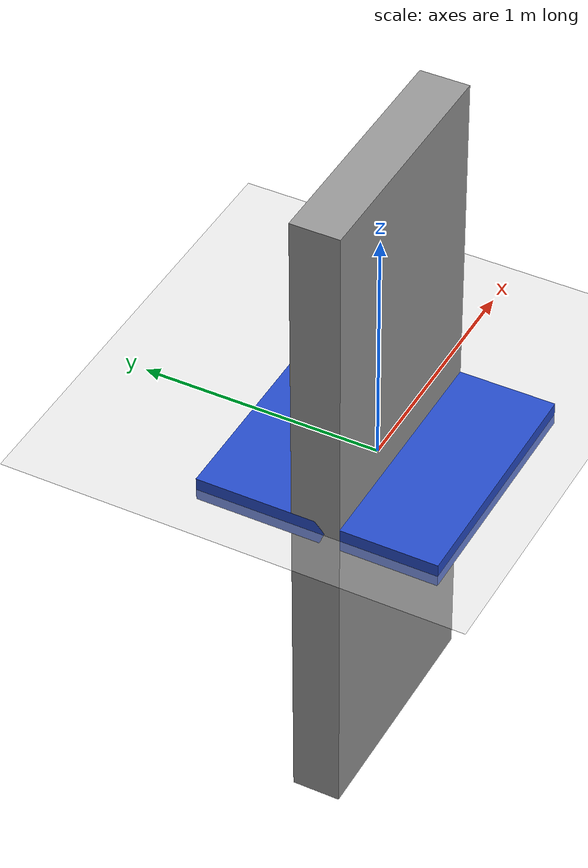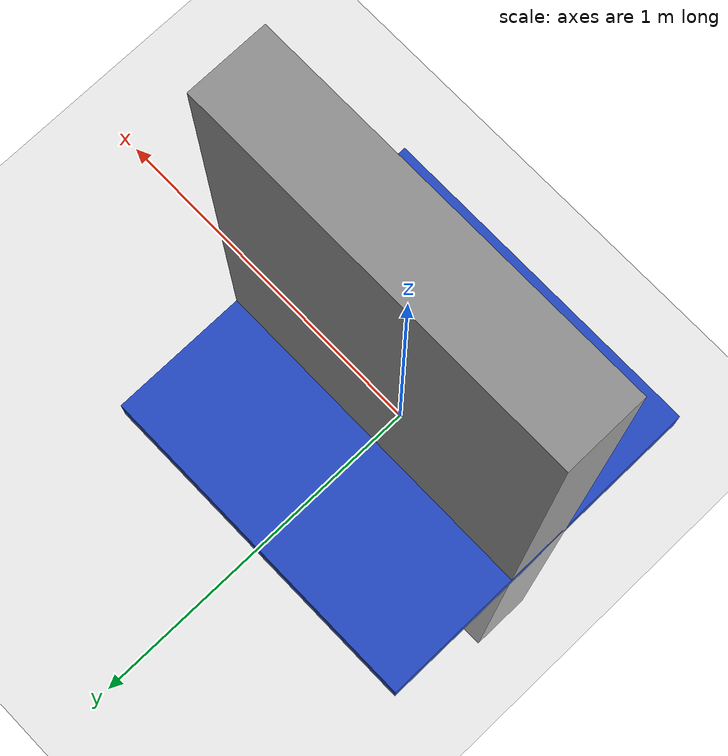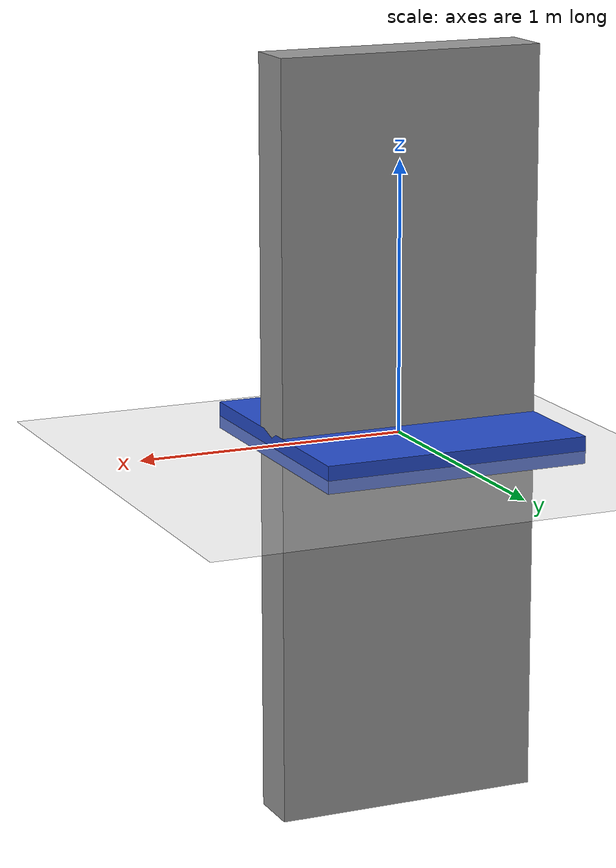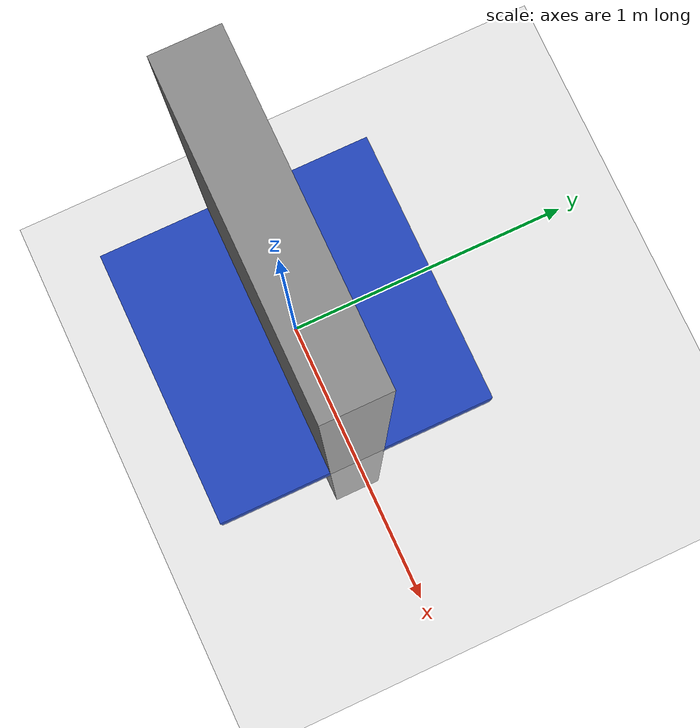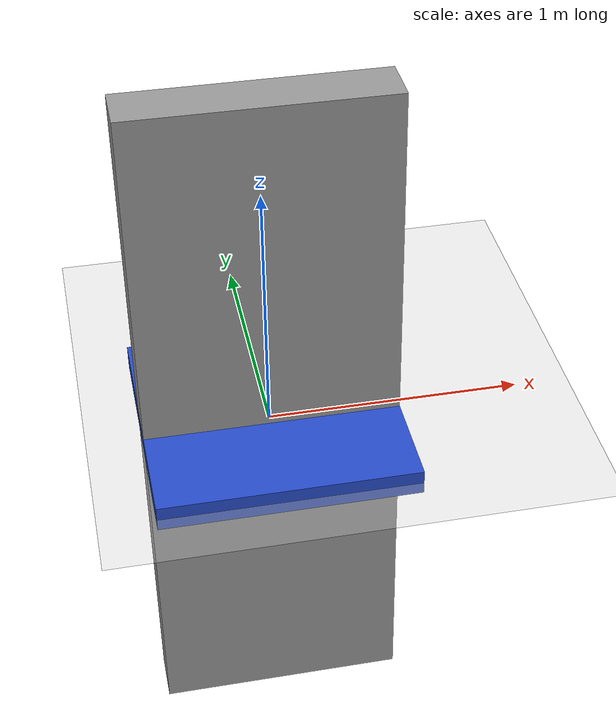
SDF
<sdf version="1.4">
 <world name="default">
  <light name="sun" type="directional">
   <pose>0 0 10 0 -0 0</pose>
   <diffuse>0.8 0.8 0.8 1</diffuse>
   <specular>0.2 0.2 0.2 1</specular>
   <attenuation>
    <range>1000</range>
    <constant>0.9</constant>
    <linear>0.01</linear>
    <quadratic>0.001</quadratic>
   </attenuation>
   <direction>-0.5 0.1 -0.9</direction>
  </light>
  <model name="ground_plane">
   <static>1</static>
   <link name="link">
    <collision name="collision">
     <geometry><plane><normal>0 0 1</normal><size>100 100</size></plane></geometry>
     <surface><friction><ode><mu>100</mu><mu2>50</mu2></ode></friction></surface>
    </collision>
    <visual name="visual">
     <cast_shadows>0</cast_shadows>
     <geometry><plane><normal>0 0 1</normal><size>100 100</size></plane></geometry>
     <material>
      <script><uri>file://media/materials/scripts/gazebo.material</uri><name>Gazebo/Grey</name></script>
     </material>
    </visual>
    <velocity_decay><linear>0</linear><angular>0</angular></velocity_decay>
   </link>
  </model>
  <physics type="ode">
   <max_step_size>0.001</max_step_size>
   <real_time_factor>1</real_time_factor>
   <real_time_update_rate>1000</real_time_update_rate>
   <gravity>0 0 -9.8</gravity>
  </physics>
  <scene><ambient>0.4 0.4 0.4 1</ambient><background>0.7 0.7 0.7 1</background><shadows>1</shadows></scene>
  <model name="grey_wall_1">
   <static>1</static>
   <link name="link">
    <collision name="collision"><geometry><box><size>1 0.2 2.8</size></box></geometry></collision>
    <visual name="visual">
     <cast_shadows>0</cast_shadows>
     <geometry><box><size>1 0.2 2.8</size></box></geometry>
     <material>
      <script>
       <uri>model://grey_wall/materials/scripts</uri>
       <uri>model://grey_wall/materials/textures</uri>
       <name>vrc/grey_wall</name>
      </script>
     </material>
    </visual>
    <velocity_decay><linear>0</linear><angular>0</angular></velocity_decay>
   </link>
  </model>
  <model name="grey_wall_2">
   <static>1</static>
   <link name="link">
    <collision name="collision"><geometry><box><size>1 0.2 2.8</size></box></geometry></collision>
    <visual name="visual">
     <cast_shadows>0</cast_shadows>
     <geometry><box><size>1 0.2 2.8</size></box></geometry>
     <material>
      <script>
       <uri>model://grey_wall/materials/scripts</uri>
       <uri>model://grey_wall/materials/textures</uri>
       <name>vrc/grey_wall</name>
      </script>
     </material>
    </visual>
    <velocity_decay><linear>0</linear><angular>0</angular></velocity_decay>
   </link>
  </model>
  <model name="grey_wall_3">
   <static>1</static>
   <link name="link">
    <collision name="collision"><geometry><box><size>1 0.2 2.8</size></box></geometry></collision>
    <visual name="visual">
     <cast_shadows>0</cast_shadows>
     <geometry><box><size>1 0.2 2.8</size></box></geometry>
     <material>
      <script>
       <uri>model://grey_wall/materials/scripts</uri>
       <uri>model://grey_wall/materials/textures</uri>
       <name>vrc/grey_wall</name>
      </script>
     </material>
    </visual>
    <velocity_decay><linear>0</linear><angular>0</angular></velocity_decay>
   </link>
  </model>
  <model name="grey_wall_4">
   <static>1</static>
   <link name="link">
    <collision name="collision"><geometry><box><size>1 0.2 2.8</size></box></geometry></collision>
    <visual name="visual">
     <cast_shadows>0</cast_shadows>
     <geometry><box><size>1 0.2 2.8</size></box></geometry>
     <material>
      <script>
       <uri>model://grey_wall/materials/scripts</uri>
       <uri>model://grey_wall/materials/textures</uri>
       <name>vrc/grey_wall</name>
      </script>
     </material>
    </visual>
    <velocity_decay><linear>0</linear><angular>0</angular></velocity_decay>
   </link>
  </model>
  <model name="grey_wall_5">
   <static>1</static>
   <link name="link">
    <collision name="collision"><geometry><box><size>1 0.2 2.8</size></box></geometry></collision>
    <visual name="visual">
     <cast_shadows>0</cast_shadows>
     <geometry><box><size>1 0.2 2.8</size></box></geometry>
     <material>
      <script>
       <uri>model://grey_wall/materials/scripts</uri>
       <uri>model://grey_wall/materials/textures</uri>
       <name>vrc/grey_wall</name>
      </script>
     </material>
    </visual>
    <velocity_decay><linear>0</linear><angular>0</angular></velocity_decay>
   </link>
  </model>
  <model name="grey_wall_6">
   <static>1</static>
   <link name="link">
    <collision name="collision"><geometry><box><size>1 0.2 2.8</size></box></geometry></collision>
    <visual name="visual">
     <cast_shadows>0</cast_shadows>
     <geometry><box><size>1 0.2 2.8</size></box></geometry>
     <material>
      <script>
       <uri>model://grey_wall/materials/scripts</uri>
       <uri>model://grey_wall/materials/textures</uri>
       <name>vrc/grey_wall</name>
      </script>
     </material>
    </visual>
    <velocity_decay><linear>0</linear><angular>0</angular></velocity_decay>
   </link>
  </model>
  <model name="grey_wall_7">
   <static>1</static>
   <link name="link">
    <collision name="collision"><geometry><box><size>1 0.2 2.8</size></box></geometry></collision>
    <visual name="visual">
     <cast_shadows>0</cast_shadows>
     <geometry><box><size>1 0.2 2.8</size></box></geometry>
     <material>
      <script>
       <uri>model://grey_wall/materials/scripts</uri>
       <uri>model://grey_wall/materials/textures</uri>
       <name>vrc/grey_wall</name>
      </script>
     </material>
    </visual>
    <velocity_decay><linear>0</linear><angular>0</angular></velocity_decay>
   </link>
  </model>
  <model name="grey_wall_8">
   <static>1</static>
   <link name="link">
    <collision name="collision"><geometry><box><size>1 0.2 2.8</size></box></geometry></collision>
    <visual name="visual">
     <cast_shadows>0</cast_shadows>
     <geometry><box><size>1 0.2 2.8</size></box></geometry>
     <material>
      <script>
       <uri>model://grey_wall/materials/scripts</uri>
       <uri>model://grey_wall/materials/textures</uri>
       <name>Gazebo/Grey</name>
      </script>
     </material>
    </visual>
    <velocity_decay><linear>0</linear><angular>0</angular></velocity_decay>
   </link>
  </model>
  <model name="grey_wall_9">
   <static>1</static>
   <link name="link">
    <collision name="collision"><geometry><box><size>1 0.2 2.8</size></box></geometry></collision>
    <visual name="visual">
     <cast_shadows>0</cast_shadows>
     <geometry><box><size>1 0.2 2.8</size></box></geometry>
     <material>
      <script>
       <uri>model://grey_wall/materials/scripts</uri>
       <uri>model://grey_wall/materials/textures</uri>
       <name>Gazebo/Grey</name>
      </script>
     </material>
    </visual>
    <velocity_decay><linear>0</linear><angular>0</angular></velocity_decay>
   </link>
  </model>
  <model name="grey_wall_10">
   <static>1</static>
   <link name="link">
    <collision name="collision"><geometry><box><size>1 0.2 2.8</size></box></geometry></collision>
    <visual name="visual">
     <cast_shadows>0</cast_shadows>
     <geometry><box><size>1 0.2 2.8</size></box></geometry>
     <material>
      <script>
       <uri>model://grey_wall/materials/scripts</uri>
       <uri>model://grey_wall/materials/textures</uri>
       <name>Gazebo/Grey</name>
      </script>
     </material>
    </visual>
    <velocity_decay><linear>0</linear><angular>0</angular></velocity_decay>
   </link>
  </model>
  <model name="grey_wall_11">
   <static>1</static>
   <link name="link">
    <collision name="collision"><geometry><box><size>1 0.2 2.8</size></box></geometry></collision>
    <visual name="visual">
     <cast_shadows>0</cast_shadows>
     <geometry><box><size>1 0.2 2.8</size></box></geometry>
     <material>
      <script>
       <uri>model://grey_wall/materials/scripts</uri>
       <uri>model://grey_wall/materials/textures</uri>
       <name>vrc/grey_wall</name>
      </script>
     </material>
    </visual>
    <velocity_decay><linear>0</linear><angular>0</angular></velocity_decay>
   </link>
  </model>
  <model name="grey_wall_12">
   <static>1</static>
   <link name="link">
    <collision name="collision"><geometry><box><size>1 0.2 2.8</size></box></geometry></collision>
    <visual name="visual">
     <cast_shadows>0</cast_shadows>
     <geometry><box><size>1 0.2 2.8</size></box></geometry>
     <material>
      <script>
       <uri>model://grey_wall/materials/scripts</uri>
       <uri>model://grey_wall/materials/textures</uri>
       <name>vrc/grey_wall</name>
      </script>
     </material>
    </visual>
    <velocity_decay><linear>0</linear><angular>0</angular></velocity_decay>
   </link>
  </model>
  <model name="grey_wall_13">
   <static>1</static>
   <link name="link">
    <collision name="collision"><geometry><box><size>1 0.2 2.8</size></box></geometry></collision>
    <visual name="visual">
     <cast_shadows>0</cast_shadows>
     <geometry><box><size>1 0.2 2.8</size></box></geometry>
     <material>
      <script>
       <uri>model://grey_wall/materials/scripts</uri>
       <uri>model://grey_wall/materials/textures</uri>
       <name>vrc/grey_wall</name>
      </script>
     </material>
    </visual>
    <velocity_decay><linear>0</linear><angular>0</angular></velocity_decay>
   </link>
  </model>
  <model name="grey_wall_14">
   <static>1</static>
   <link name="link">
    <collision name="collision"><geometry><box><size>1 0.2 2.8</size></box></geometry></collision>
    <visual name="visual">
     <cast_shadows>0</cast_shadows>
     <geometry><box><size>1 0.2 2.8</size></box></geometry>
     <material>
      <script>
       <uri>model://grey_wall/materials/scripts</uri>
       <uri>model://grey_wall/materials/textures</uri>
       <name>vrc/grey_wall</name>
      </script>
     </material>
    </visual>
    <velocity_decay><linear>0</linear><angular>0</angular></velocity_decay>
   </link>
  </model>
  <model name="grey_wall_15">
   <static>1</static>
   <link name="link">
    <collision name="collision"><geometry><box><size>1 0.2 2.8</size></box></geometry></collision>
    <visual name="visual">
     <cast_shadows>0</cast_shadows>
     <geometry><box><size>1 0.2 2.8</size></box></geometry>
     <material>
      <script>
       <uri>model://grey_wall/materials/scripts</uri>
       <uri>model://grey_wall/materials/textures</uri>
       <name>vrc/grey_wall</name>
      </script>
     </material>
    </visual>
    <velocity_decay><linear>0</linear><angular>0</angular></velocity_decay>
   </link>
  </model>
  <model name="grey_wall_16">
   <static>1</static>
   <link name="link">
    <collision name="collision"><geometry><box><size>1 0.2 2.8</size></box></geometry></collision>
    <visual name="visual">
     <cast_shadows>0</cast_shadows>
     <geometry><box><size>1 0.2 2.8</size></box></geometry>
     <material>
      <script>
       <uri>model://grey_wall/materials/scripts</uri>
       <uri>model://grey_wall/materials/textures</uri>
       <name>vrc/grey_wall</name>
      </script>
     </material>
    </visual>
    <velocity_decay><linear>0</linear><angular>0</angular></velocity_decay>
   </link>
  </model>
  <model name="grey_wall_17">
   <static>1</static>
   <link name="link">
    <collision name="collision"><geometry><box><size>1 0.2 2.8</size></box></geometry></collision>
    <visual name="visual">
     <cast_shadows>0</cast_shadows>
     <geometry><box><size>1 0.2 2.8</size></box></geometry>
     <material>
      <script>
       <uri>model://grey_wall/materials/scripts</uri>
       <uri>model://grey_wall/materials/textures</uri>
       <name>vrc/grey_wall</name>
      </script>
     </material>
    </visual>
    <velocity_decay><linear>0</linear><angular>0</angular></velocity_decay>
   </link>
  </model>
  <model name="grey_wall_18">
   <static>1</static>
   <link name="link">
    <collision name="collision"><geometry><box><size>1 0.2 2.8</size></box></geometry></collision>
    <visual name="visual">
     <cast_shadows>0</cast_shadows>
     <geometry><box><size>1 0.2 2.8</size></box></geometry>
     <material>
      <script>
       <uri>model://grey_wall/materials/scripts</uri>
       <uri>model://grey_wall/materials/textures</uri>
       <name>vrc/grey_wall</name>
      </script>
     </material>
    </visual>
    <velocity_decay><linear>0</linear><angular>0</angular></velocity_decay>
   </link>
  </model>
  <model name="grey_wall_19">
   <static>1</static>
   <link name="link">
    <collision name="collision"><geometry><box><size>1 0.2 2.8</size></box></geometry></collision>
    <visual name="visual">
     <cast_shadows>0</cast_shadows>
     <geometry><box><size>1 0.2 2.8</size></box></geometry>
     <material>
      <script>
       <uri>model://grey_wall/materials/scripts</uri>
       <uri>model://grey_wall/materials/textures</uri>
       <name>vrc/grey_wall</name>
      </script>
     </material>
    </visual>
    <velocity_decay><linear>0</linear><angular>0</angular></velocity_decay>
   </link>
  </model>
  <model name="grey_wall_20">
   <static>1</static>
   <link name="link">
    <collision name="collision"><geometry><box><size>1 0.2 2.8</size></box></geometry></collision>
    <visual name="visual">
     <cast_shadows>0</cast_shadows>
     <geometry><box><size>1 0.2 2.8</size></box></geometry>
     <material>
      <script>
       <uri>model://grey_wall/materials/scripts</uri>
       <uri>model://grey_wall/materials/textures</uri>
       <name>vrc/grey_wall</name>
      </script>
     </material>
    </visual>
    <velocity_decay><linear>0</linear><angular>0</angular></velocity_decay>
   </link>
  </model>
  <model name="grey_wall_21">
   <static>1</static>
   <link name="link">
    <collision name="collision"><geometry><box><size>1 0.2 2.8</size></box></geometry></collision>
    <visual name="visual">
     <cast_shadows>0</cast_shadows>
     <geometry><box><size>1 0.2 2.8</size></box></geometry>
     <material>
      <script>
       <uri>model://grey_wall/materials/scripts</uri>
       <uri>model://grey_wall/materials/textures</uri>
       <name>vrc/grey_wall</name>
      </script>
     </material>
    </visual>
    <velocity_decay><linear>0</linear><angular>0</angular></velocity_decay>
   </link>
  </model>
  <model name="grey_wall_22">
   <static>1</static>
   <link name="link">
    <collision name="collision"><geometry><box><size>1 0.2 2.8</size></box></geometry></collision>
    <visual name="visual">
     <cast_shadows>0</cast_shadows>
     <geometry><box><size>1 0.2 2.8</size></box></geometry>
     <material>
      <script>
       <uri>model://grey_wall/materials/scripts</uri>
       <uri>model://grey_wall/materials/textures</uri>
       <name>vrc/grey_wall</name>
      </script>
     </material>
    </visual>
    <velocity_decay><linear>0</linear><angular>0</angular></velocity_decay>
   </link>
  </model>
  <model name="grey_wall_23">
   <static>1</static>
   <link name="link">
    <collision name="collision"><geometry><box><size>1 0.2 2.8</size></box></geometry></collision>
    <visual name="visual">
     <cast_shadows>0</cast_shadows>
     <geometry><box><size>1 0.2 2.8</size></box></geometry>
     <material>
      <script>
       <uri>model://grey_wall/materials/scripts</uri>
       <uri>model://grey_wall/materials/textures</uri>
       <name>vrc/grey_wall</name>
      </script>
     </material>
    </visual>
    <velocity_decay><linear>0</linear><angular>0</angular></velocity_decay>
   </link>
  </model>
  <model name="grey_wall_24">
   <static>1</static>
   <link name="link">
    <collision name="collision"><geometry><box><size>1 0.2 2.8</size></box></geometry></collision>
    <visual name="visual">
     <cast_shadows>0</cast_shadows>
     <geometry><box><size>1 0.2 2.8</size></box></geometry>
     <material>
      <script>
       <uri>model://grey_wall/materials/scripts</uri>
       <uri>model://grey_wall/materials/textures</uri>
       <name>vrc/grey_wall</name>
      </script>
     </material>
    </visual>
    <velocity_decay><linear>0</linear><angular>0</angular></velocity_decay>
   </link>
  </model>
  <model name="grey_wall_25">
   <static>1</static>
   <link name="link">
    <collision name="collision"><geometry><box><size>1 0.2 2.8</size></box></geometry></collision>
    <visual name="visual">
     <cast_shadows>0</cast_shadows>
     <geometry><box><size>1 0.2 2.8</size></box></geometry>
     <material>
      <script>
       <uri>model://grey_wall/materials/scripts</uri>
       <uri>model://grey_wall/materials/textures</uri>
       <name>vrc/grey_wall</name>
      </script>
     </material>
    </visual>
    <velocity_decay><linear>0</linear><angular>0</angular></velocity_decay>
   </link>
  </model>
  <model name="grey_wall_26">
   <static>1</static>
   <link name="link">
    <collision name="collision"><geometry><box><size>1 0.2 2.8</size></box></geometry></collision>
    <visual name="visual">
     <cast_shadows>0</cast_shadows>
     <geometry><box><size>1 0.2 2.8</size></box></geometry>
     <material>
      <script>
       <uri>model://grey_wall/materials/scripts</uri>
       <uri>model://grey_wall/materials/textures</uri>
       <name>vrc/grey_wall</name>
      </script>
     </material>
    </visual>
    <velocity_decay><linear>0</linear><angular>0</angular></velocity_decay>
   </link>
  </model>
  <model name="grey_wall_27">
   <static>1</static>
   <link name="link">
    <collision name="collision"><geometry><box><size>1 0.2 2.8</size></box></geometry></collision>
    <visual name="visual">
     <cast_shadows>0</cast_shadows>
     <geometry><box><size>1 0.2 2.8</size></box></geometry>
     <material>
      <script>
       <uri>model://grey_wall/materials/scripts</uri>
       <uri>model://grey_wall/materials/textures</uri>
       <name>vrc/grey_wall</name>
      </script>
     </material>
    </visual>
    <velocity_decay><linear>0</linear><angular>0</angular></velocity_decay>
   </link>
  </model>
  <model name="grey_wall_28">
   <static>1</static>
   <link name="link">
    <collision name="collision"><geometry><box><size>1 0.2 2.8</size></box></geometry></collision>
    <visual name="visual">
     <cast_shadows>0</cast_shadows>
     <geometry><box><size>1 0.2 2.8</size></box></geometry>
     <material>
      <script>
       <uri>model://grey_wall/materials/scripts</uri>
       <uri>model://grey_wall/materials/textures</uri>
       <name>vrc/grey_wall</name>
      </script>
     </material>
    </visual>
    <velocity_decay><linear>0</linear><angular>0</angular></velocity_decay>
   </link>
  </model>
  <model name="grey_wall_29">
   <static>1</static>
   <link name="link">
    <collision name="collision"><geometry><box><size>1 0.2 2.8</size></box></geometry></collision>
    <visual name="visual">
     <cast_shadows>0</cast_shadows>
     <geometry><box><size>1 0.2 2.8</size></box></geometry>
     <material>
      <script>
       <uri>model://grey_wall/materials/scripts</uri>
       <uri>model://grey_wall/materials/textures</uri>
       <name>vrc/grey_wall</name>
      </script>
     </material>
    </visual>
    <velocity_decay><linear>0</linear><angular>0</angular></velocity_decay>
   </link>
  </model>
  <model name="grey_wall_30">
   <static>1</static>
   <link name="link">
    <collision name="collision"><geometry><box><size>1 0.2 2.8</size></box></geometry></collision>
    <visual name="visual">
     <cast_shadows>0</cast_shadows>
     <geometry><box><size>1 0.2 2.8</size></box></geometry>
     <material>
      <script>
       <uri>model://grey_wall/materials/scripts</uri>
       <uri>model://grey_wall/materials/textures</uri>
       <name>vrc/grey_wall</name>
      </script>
     </material>
    </visual>
    <velocity_decay><linear>0</linear><angular>0</angular></velocity_decay>
   </link>
  </model>
  <model name="grey_wall_31">
   <static>1</static>
   <link name="link">
    <collision name="collision"><geometry><box><size>1 0.2 2.8</size></box></geometry></collision>
    <visual name="visual">
     <cast_shadows>0</cast_shadows>
     <geometry><box><size>1 0.2 2.8</size></box></geometry>
     <material>
      <script>
       <uri>model://grey_wall/materials/scripts</uri>
       <uri>model://grey_wall/materials/textures</uri>
       <name>vrc/grey_wall</name>
      </script>
     </material>
    </visual>
    <velocity_decay><linear>0</linear><angular>0</angular></velocity_decay>
   </link>
  </model>
  <model name="grey_wall_32">
   <static>1</static>
   <link name="link">
    <collision name="collision"><geometry><box><size>1 0.2 2.8</size></box></geometry></collision>
    <visual name="visual">
     <cast_shadows>0</cast_shadows>
     <geometry><box><size>1 0.2 2.8</size></box></geometry>
     <material>
      <script>
       <uri>model://grey_wall/materials/scripts</uri>
       <uri>model://grey_wall/materials/textures</uri>
       <name>vrc/grey_wall</name>
      </script>
     </material>
    </visual>
    <velocity_decay><linear>0</linear><angular>0</angular></velocity_decay>
   </link>
  </model>
  <model name="anomaly_2">
   <static>1</static>
   <link name="link">
    <visual name="visual">
     <cast_shadows>0</cast_shadows>
     <geometry><box><size>1 1 0.1</size></box></geometry>
     <material>
      <script>
       <uri>model://grey_wall/materials/scripts</uri>
       <uri>model://grey_wall/materials/textures</uri>
       <name>Gazebo/Blue</name>
      </script>
     </material>
    </visual>
    <velocity_decay><linear>0</linear><angular>0</angular></velocity_decay>
    <gravity>0</gravity>
   </link>
  </model>
 </world>
</sdf>
